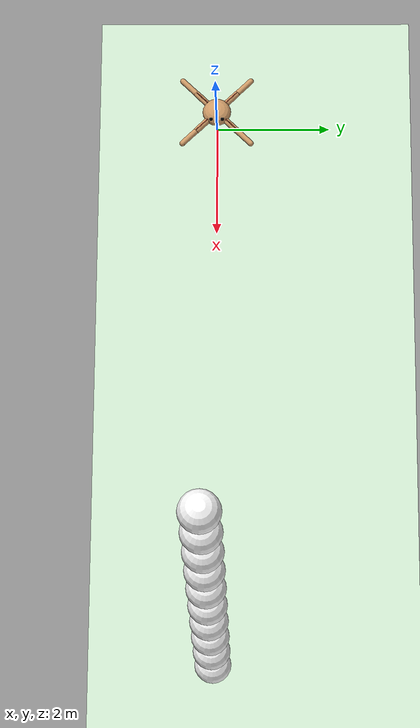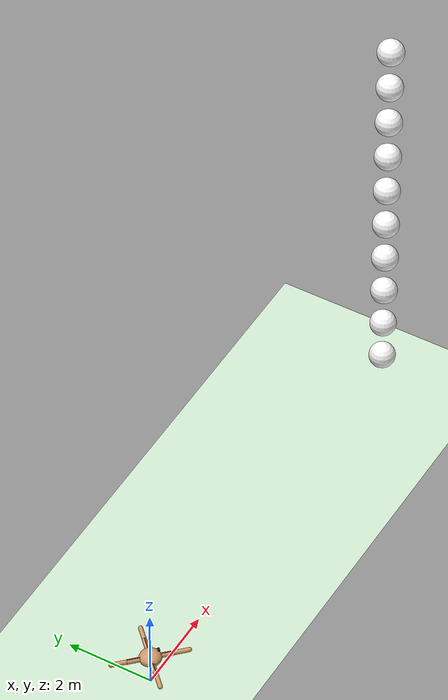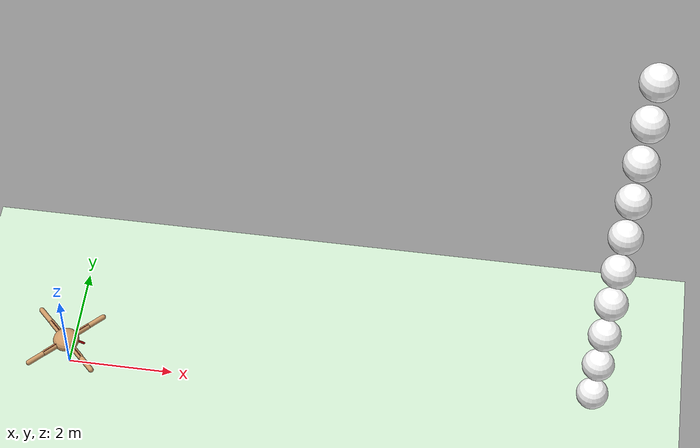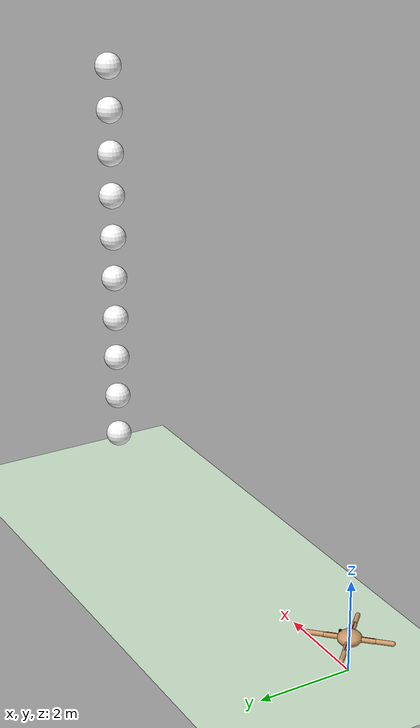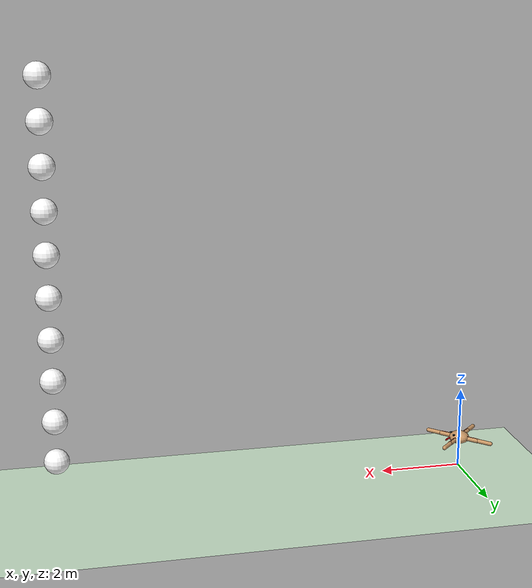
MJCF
<mujoco model="ant">
  <compiler angle="degree" coordinate="local" inertiafromgeom="true" />
  <option integrator="RK4" /> <!--  timestep="0.01"  -->

  <visual>
    <quality shadowsize='8192'/>
    <map znear='0.001'/>
  </visual>

  <default>
    <joint armature="0.1" damping="1" limited="true"/>
    <geom conaffinity="0" condim="3" density="5.0" friction="0.5 0.5 0.5" margin="0.01" rgba="0.8 0.6 0.4 1"/>
    <motor ctrllimited="true" ctrlrange="-0.2 0.2" gear="30" />
  </default>

  <asset>
    <texture builtin="gradient" height="100" rgb1="1 1 1" rgb2="0 0 0" type="skybox" width="100"/>
    <texture builtin="flat" height="1278" mark="cross" markrgb="1 1 1" name="texgeom" random="0.01" rgb1="0.8 0.6 0.4" rgb2="0.8 0.6 0.4" type="cube" width="127"/>
    <texture builtin="checker" height="100" name="texplane" rgb1="0 0 0" rgb2="0.8 0.8 0.8" type="2d" width="100"/>
    <texture name="foodtexture" type="2d" file="food_texture.png"/>
    <material name="foodmaterial" reflectance="0.5" shininess="1" specular="0.2" texture="foodtexture"/>
    <material name="MatPlane" reflectance="0.5" shininess="1" specular="1" texrepeat="60 60" texture="texplane"/>
    <material name="geom" texture="texgeom" texuniform="true"/>
  </asset>

  <worldbody>
    <light cutoff="100" diffuse="1 1 1" dir="-0 0 -1.3" directional="true" exponent="1" pos="0 0 1.3" specular=".1 .1 .1"/>
    <geom conaffinity="1" condim="3" material="MatPlane" name="floor" pos="0 0 0" rgba="0.8 0.9 0.8 1" size="40 40 40" type="plane"/>

    <body name="food_body_1" pos="10.0 0.0 1.">
      <geom rgba="1. 1. 1. 1" name="food_geom_1" type="sphere" size="0.3 0.3 0.3" density='25' contype="1" material="foodmaterial" conaffinity="1"/>
      <joint name="food_free_1" type="free" armature='0' damping="0" limited="false" frictionloss="0.2" />
    </body>

    <body name="food_body_2" pos="10.0 0.0 2.">
      <geom rgba="1. 1. 1. 1" name="food_geom_2" type="sphere" size="0.3 0.3 0.3" density='25' contype="1" material="foodmaterial" conaffinity="1"/>
      <joint name="food_free_2" type="free" armature='0' damping="0" limited="false" frictionloss="0.2" />
    </body>

    <body name="food_body_3" pos="10.0 0.0 3.">
      <geom rgba="1. 1. 1. 1" name="food_geom_3" type="sphere" size="0.3 0.3 0.3" density='25' contype="1" material="foodmaterial" conaffinity="1"/>
      <joint name="food_free_3" type="free" armature='0' damping="0" limited="false" frictionloss="0.2" />
    </body>

    <body name="food_body_4" pos="10.0 0.0 4.">
      <geom rgba="1. 1. 1. 1" name="food_geom_4" type="sphere" size="0.3 0.3 0.3" density='25' contype="1" material="foodmaterial" conaffinity="1"/>
      <joint name="food_free_4" type="free" armature='0' damping="0" limited="false" frictionloss="0.2" />
    </body>

    <body name="food_body_5" pos="10.0 0.0 5.">
      <geom rgba="1. 1. 1. 1" name="food_geom_5" type="sphere" size="0.3 0.3 0.3" density='25' contype="1" material="foodmaterial" conaffinity="1"/>
      <joint name="food_free_5" type="free" armature='0' damping="0" limited="false" frictionloss="0.2" />
    </body>

    <body name="food_body_6" pos="10.0 0.0 6.">
      <geom rgba="1. 1. 1. 1" name="food_geom_6" type="sphere" size="0.3 0.3 0.3" density='25' contype="1" material="foodmaterial" conaffinity="1"/>
      <joint name="food_free_6" type="free" armature='0' damping="0" limited="false" frictionloss="0.2" />
    </body>

    <body name="food_body_7" pos="10.0 0.0 7.">
      <geom rgba="1. 1. 1. 1" name="food_geom_7" type="sphere" size="0.3 0.3 0.3" density='25' contype="1" material="foodmaterial" conaffinity="1"/>
      <joint name="food_free_7" type="free" armature='0' damping="0" limited="false" frictionloss="0.2" />
    </body>

    <body name="food_body_8" pos="10.0 0.0 8.">
      <geom rgba="1. 1. 1. 1" name="food_geom_8" type="sphere" size="0.3 0.3 0.3" density='25' contype="1" material="foodmaterial" conaffinity="1"/>
      <joint name="food_free_8" type="free" armature='0' damping="0" limited="false" frictionloss="0.2" />
    </body>

    <body name="food_body_9" pos="10.0 0.0 9.">
      <geom rgba="1. 1. 1. 1" name="food_geom_9" type="sphere" size="0.3 0.3 0.3" density='25' contype="1" material="foodmaterial" conaffinity="1"/>
      <joint name="food_free_9" type="free" armature='0' damping="0" limited="false" frictionloss="0.2" />
    </body>

    <body name="food_body_10" pos="10.0 0.0 10.">
      <geom rgba="1. 1. 1. 1" name="food_geom_10" type="sphere" size="0.3 0.3 0.3" density='25' contype="1" material="foodmaterial" conaffinity="1"/>
      <joint name="food_free_10" type="free" armature='0' damping="0" limited="false" frictionloss="0.2" />
    </body>

    <body name="torso" pos="0 0 0.75">
      <joint armature="0" damping="0" limited="false" margin="0.01" name="root" pos="0 0 0" type="free"/>
      <geom fromto="0.24 0.0 0.0  0.34 0.0 -0.05" name="beak" size="0.02" type="capsule" rgba="0.6 0.0 0.0 1"/>

      <camera name="right_view" mode="fixed" pos="0.2 -0.1 0.1" xyaxes="0 -1 0 0 0 1" fovy="120"  />
      <geom pos="0.18 -0.1 0.1" name="gviewR" size="0.03" type="sphere" rgba="0.0 0.0 0.0 1"/>
      <geom pos="0.17 -0.1 0.1" name="gviewR1" size="0.02" type="sphere" rgba="0.0 0.0 0.0 1"/>
      <camera name="left_view" mode="fixed" pos="0.2 +0.1 0.1" xyaxes="0 -1 0 0 0 1" fovy="120"  />
      <geom pos="0.18 +0.1 0.1" name="gviewL" size="0.03" type="sphere" rgba="0.0 0.0 0.0 1"/>
      <geom pos="0.17 +0.1 0.1" name="gviewL1" size="0.02" type="sphere" rgba="0.0 0.0 0.0 1"/>

      <camera name="top_view" mode="trackcom" pos="0 0 4" xyaxes="0 -1 0 1 0 0"/>

      <geom name="torso_geom" pos="0 0 0" size="0.25 0.25 0.15" type="ellipsoid"/>
      <site name="imu" />

      <body name="front_left_leg" pos="0.05 0.05 0.">
        <joint axis="0 0 1" name="hip_1a" pos="0.0 0.0 0.0" range="-30 30" type="hinge"/>
        <geom name="aux_1a_geom" size="0.002" type="sphere" />
        <body name="aux_1b" pos="0.05 0.05 0.0">
          <joint axis="-1 1 0" name="hip_1b" pos="0.0 0.0 0.0" range="-20 70" type="hinge"/>
          <geom name="aux_1c_geom" size="0.060" type="sphere" />
          <body name="aux_1c" pos="0.05 0.05 0.0">
            <geom fromto="0.0 0.0 0.0 0.2 0.2 0.0" name="fleft_leg_geom" size="0.055" type="capsule"/>
            <geom fromto="0.0 0.0 0.05 0.2 0.2 0.05" name="fleft_leg_geom2" size="0.01" type="capsule" rgba="0.7 0.3 0.2 1" />
            <body pos="0.2 0.2 0">
              <joint axis="-1 1 0" name="ankle_1" pos="0.0 0.0 0.0" range="0 60" type="hinge"/>
              <geom fromto="0.0 0.0 0.0 0.25 0.25 0.0" name="fleft_ankle_geom" size="0.050" type="capsule" />
            </body>
          </body>
        </body>
      </body>

      <body name="front_right_leg" pos="0.05 -0.05 0.">
        <joint axis="0 0 1" name="hip_2a" pos="0.0 0.0 0.0" range="-30 30" type="hinge"/>
        <geom name="aux_2a_geom" size="0.002" type="sphere" />
        <body name="aux_2b" pos="0.05 -0.05 0.0">
          <joint axis="1 1 0" name="hip_2b" pos="0.0 0.0 0.0" range="-20 70" type="hinge"/>
          <geom name="aux_2c_geom" size="0.060" type="sphere" />
          <body name="aux_2c" pos="0.05 -0.05 0.0">
            <geom fromto="0.0 0.0 0.0 0.2 -0.2 0.0" name="fright_leg_geom" size="0.055" type="capsule"/>
            <geom fromto="0.0 0.0 0.05 0.2 -0.2 0.05" name="fright_leg_geom2" size="0.01" type="capsule" rgba="0.7 0.3 0.2 1" />
            <body pos="0.2 -0.2 0">
              <joint axis="1 1 0" name="ankle_2" pos="0.0 0.0 0.0" range="0 60" type="hinge"/>
              <geom fromto="0.0 0.0 0.0 0.25 -0.25 0.0" name="fright_ankle_geom" size="0.050" type="capsule" />
            </body>
          </body>
        </body>
      </body>

      <body name="back_right_leg" pos="-0.05 -0.05 0.">
        <joint axis="0 0 1" name="hip_3a" pos="0.0 0.0 0.0" range="-30 30" type="hinge"/>
        <geom name="aux_3a_geom" size="0.002" type="sphere" />
        <body name="aux_3b" pos="-0.05 -0.05 0.0">
          <joint axis="1 -1 0" name="hip_3b" pos="0.0 0.0 0.0" range="-20 70" type="hinge"/>
          <geom name="aux_3c_geom" size="0.060" type="sphere" />
          <body name="aux_3c" pos="-0.05 -0.05 0.0">
            <geom fromto="0.0 0.0 0.0 -0.2 -0.2 0.0" name="bright_leg_geom" size="0.055" type="capsule"/>
            <geom fromto="0.0 0.0 0.05 -0.2 -0.2 0.05" name="bright_leg_geom2" size="0.01" type="capsule" rgba="0.7 0.3 0.2 1" />
            <body pos="-0.2 -0.2 0">
              <joint axis="1 -1 0" name="ankle_3" pos="0.0 0.0 0.0" range="0 60" type="hinge"/>
              <geom fromto="0.0 0.0 0.0 -0.25 -0.25 0.0" name="bright_ankle_geom" size="0.050" type="capsule" />
            </body>
          </body>
        </body>
      </body>

      <body name="back_left_leg" pos="-0.05 0.05 0.">
        <joint axis="0 0 1" name="hip_4a" pos="0.0 0.0 0.0" range="-30 30" type="hinge"/>
        <geom name="aux_4a_geom" size="0.002" type="sphere" />
        <body name="aux_4b" pos="-0.05 0.05 0.0">
          <joint axis="-1 -1 0" name="hip_4b" pos="0.0 0.0 0.0" range="-20 70" type="hinge"/>
          <geom name="aux_4c_geom" size="0.060" type="sphere" />
          <body name="aux_4c" pos="-0.05 0.05 0.0">
            <geom fromto="0.0 0.0 0.0 -0.2 0.2 0.0" name="bleft_leg_geom" size="0.055" type="capsule" />
            <geom fromto="0.0 0.0 0.05 -0.2 0.2 0.05" name="bleft_leg_geom2" size="0.01" type="capsule" rgba="0.7 0.3 0.2 1" />
            <body pos="-0.2 0.2 0">
              <joint axis="-1 -1 0" name="ankle_4" pos="0.0 0.0 0.0" range="0 60" type="hinge"/>
              <geom fromto="0.0 0.0 0.0 -0.25 0.25 0.0" name="bleft_ankle_geom" size="0.050" type="capsule" />
            </body>
          </body>
        </body>
      </body>
    </body>
  </worldbody>

  <actuator>
    <motor joint="hip_1a" />
    <motor joint="hip_1b" />
    <motor joint="ankle_1" />
    <motor joint="hip_2a" />
    <motor joint="hip_2b" />
    <motor joint="ankle_2" />
    <motor joint="hip_3a" />
    <motor joint="hip_3b" />
    <motor joint="ankle_3" />
    <motor joint="hip_4a" />
    <motor joint="hip_4b" />
    <motor joint="ankle_4" />
  </actuator>

  <sensor>
    <jointpos joint="hip_1a" noise="0.015" />
    <jointpos joint="hip_1b" />
    <jointpos joint="ankle_1" />
    <jointpos joint="hip_2a" />
    <jointpos joint="hip_2b" />
    <jointpos joint="ankle_2" />
    <jointpos joint="hip_3a" />
    <jointpos joint="hip_3b" />
    <jointpos joint="ankle_3" />
    <jointpos joint="hip_4a" />
    <jointpos joint="hip_4b" />
    <jointpos joint="ankle_4" />

    <jointvel joint="hip_1a" />
    <jointvel joint="hip_1b" />
    <jointvel joint="ankle_1" />
    <jointvel joint="hip_2a" />
    <jointvel joint="hip_2b" />
    <jointvel joint="ankle_2" />
    <jointvel joint="hip_3a" />
    <jointvel joint="hip_3b" />
    <jointvel joint="ankle_3" />
    <jointvel joint="hip_4a" />
    <jointvel joint="hip_4b" />
    <jointvel joint="ankle_4" />
    <gyro name="gyro" site="imu" />
    <accelerometer name="accelerometer" site="imu" />
    <magnetometer name="magnetometer" site="imu" />
  </sensor>

</mujoco>
